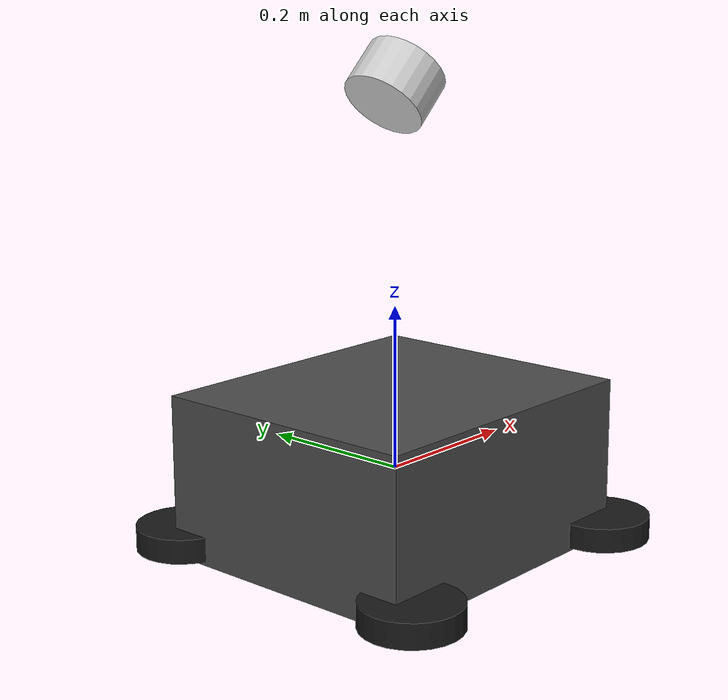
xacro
<?xml version="1.0"?>
<robot xmlns:xacro="http://www.ros.org/wiki/xacro" name="cod_robot">

  <!-- ===== 材料 ===== -->
  <material name="chassis_gray"><color rgba="0.3 0.3 0.3 1.0"/></material>
  <material name="wheel_black"><color rgba="0.1 0.1 0.1 1.0"/></material>
  <material name="lidar_white"><color rgba="0.8 0.8 0.8 1.0"/></material>

  <!-- ===== base_link (底盘) ===== -->
  <link name="base_link">
    <visual>
      <geometry><box size="0.40 0.35 0.20"/></geometry>
      <material name="chassis_gray"/>
    </visual>
    <collision>
      <geometry><box size="0.40 0.35 0.20"/></geometry>
    </collision>
    <inertial>
      <mass value="15.0"/>
      <origin xyz="0 0 0.05" rpy="0 0 0"/>
      <inertia ixx="0.3" ixy="0" ixz="0" iyy="0.3" iyz="0" izz="0.4"/>
    </inertial>
  </link>

  <!-- ===== 麦克纳姆轮 x4 ===== -->
  <xacro:macro name="wheel" params="name x y">
    <link name="${name}_wheel">
      <visual>
        <geometry><cylinder radius="0.06" length="0.03"/></geometry>
        <material name="wheel_black"/>
      </visual>
      <collision>
        <geometry><cylinder radius="0.06" length="0.03"/></geometry>
      </collision>
      <inertial>
        <mass value="0.5"/>
        <inertia ixx="0.001" ixy="0" ixz="0" iyy="0.001" iyz="0" izz="0.001"/>
      </inertial>
    </link>
    <joint name="${name}_wheel_joint" type="continuous">
      <parent link="base_link"/>
      <child link="${name}_wheel"/>
      <origin xyz="${x} ${y} -0.08" rpy="0 0 0"/>
      <axis xyz="0 1 0"/>
    </joint>
  </xacro:macro>

  <xacro:wheel name="front_left"  x="0.18" y="0.18"/>
  <xacro:wheel name="front_right" x="0.18" y="-0.18"/>
  <xacro:wheel name="rear_left"   x="-0.18" y="0.18"/>
  <xacro:wheel name="rear_right"  x="-0.18" y="-0.18"/>

  <!-- ===== Livox MID-360 安装位 ===== -->
  <link name="livox_frame">
    <visual>
      <geometry><cylinder radius="0.05" length="0.06"/></geometry>
      <material name="lidar_white"/>
    </visual>
    <inertial>
      <mass value="0.3"/>
      <inertia ixx="0.0001" ixy="0" ixz="0" iyy="0.0001" iyz="0" izz="0.0001"/>
    </inertial>
  </link>
  <joint name="livox_frame_joint" type="fixed">
    <parent link="base_link"/>
    <child link="livox_frame"/>
    <origin xyz="0.0 0.0 0.46" rpy="0 0.7854 0"/>   <!-- Measured height, pitch +45 degrees -->
  </joint>

  <!-- ===== Gazebo mecanum drive plugin ===== -->
  <gazebo>
    <plugin name="ignition::gazebo::systems::MecanumDrive"
            filename="ignition-gazebo-mecanum-drive-system">
      <front_left_joint>front_left_wheel_joint</front_left_joint>
      <front_right_joint>front_right_wheel_joint</front_right_joint>
      <back_left_joint>rear_left_wheel_joint</back_left_joint>
      <back_right_joint>rear_right_wheel_joint</back_right_joint>
      <wheel_separation>0.36</wheel_separation>
      <wheelbase>0.36</wheelbase>
      <wheel_radius>0.06</wheel_radius>
      <odom_publish_frequency>50</odom_publish_frequency>
      <topic>cmd_vel</topic>
      <odom_topic>odom</odom_topic>
      <tf_topic>tf</tf_topic>
      <frame_id>odom</frame_id>
      <child_frame_id>base_link</child_frame_id>
    </plugin>
  </gazebo>

  <!-- ===== Gazebo JointState 发布 ===== -->
  <gazebo>
    <plugin name="ignition::gazebo::systems::JointStatePublisher"
            filename="ignition-gazebo-joint-state-publisher-system">
      <joint_name>front_left_wheel_joint</joint_name>
      <joint_name>front_right_wheel_joint</joint_name>
      <joint_name>rear_left_wheel_joint</joint_name>
      <joint_name>rear_right_wheel_joint</joint_name>
    </plugin>
  </gazebo>

  <!-- ===== Gazebo LiDAR 传感器 (MID-360 仿真) ===== -->
  <gazebo reference="livox_frame">
    <sensor name="front_mid360_lidar" type="gpu_lidar">
      <pose>0 0 0 0 0 0</pose>
      <update_rate>10</update_rate>
      <ray>
        <scan>
          <horizontal>
            <samples>360</samples>
            <resolution>1</resolution>
            <min_angle>-3.14159</min_angle>
            <max_angle>3.14159</max_angle>
          </horizontal>
          <vertical>
            <samples>32</samples>
            <resolution>1</resolution>
            <min_angle>-0.12217</min_angle>
            <max_angle>0.90757</max_angle>
          </vertical>
        </scan>
        <range>
          <min>0.1</min>
          <max>40.0</max>
          <resolution>0.02</resolution>
        </range>
      </ray>
    </sensor>
  </gazebo>

  <!-- ===== Gazebo IMU 传感器 ===== -->
  <gazebo reference="livox_frame">
    <sensor name="front_mid360_imu" type="imu">
      <pose>0 0 0 0 0 0</pose>
      <update_rate>200</update_rate>
    </sensor>
  </gazebo>

</robot>
